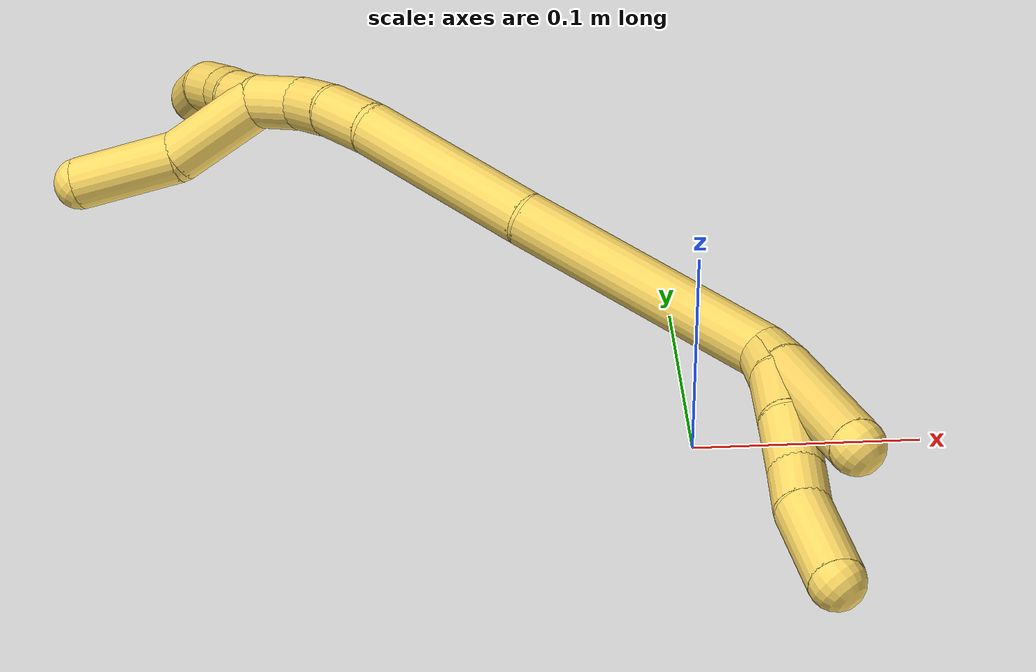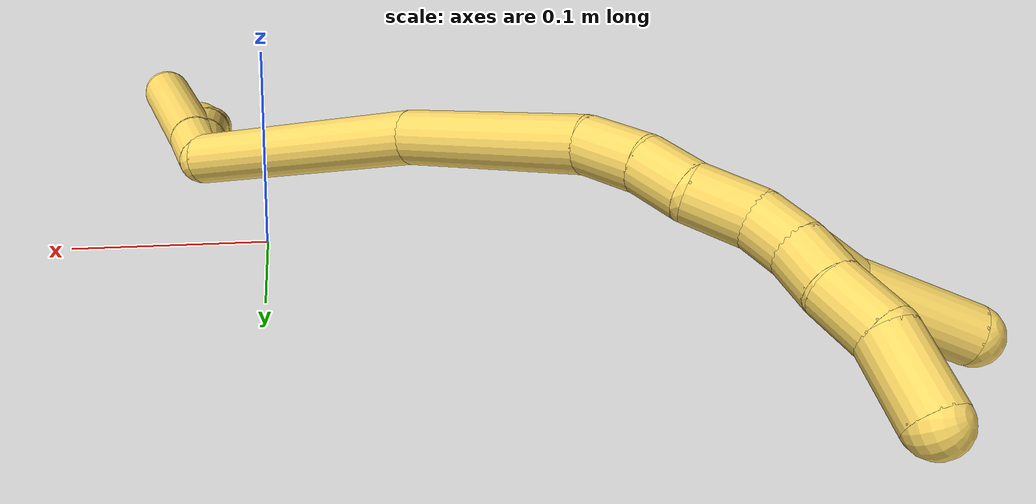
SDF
<sdf version="1.7">
 <world name="default">
  <model name="photoneo_s_sensor">
   <static>1</static>
   <pose>0 0 2 1.57079 1.57079 3.14159</pose>
   <link name="link">
    <inertial><mass>0.1</mass></inertial>
    <sensor name="sensor" type="depth">
     <update_rate>30</update_rate>
     <camera>
      <horizontal_fov>1.22</horizontal_fov>
      <image><width>1920</width><height>1200</height><format>B8G8R8</format></image>
      <clip><near>0.1</near><far>4</far></clip>
      <depth_camera><output>points</output></depth_camera>
     </camera>
     <plugin name="camera_plugin" filename="libgazebo_ros_depth_camera.so">
      <baseline>0.2</baseline>
      <alwaysOn>1</alwaysOn>
      <updateRate>0.0</updateRate>
      <cameraName>camera_ir</cameraName>
      <imageTopicName>/camera/color/image_raw</imageTopicName>
      <cameraInfoTopicName>/camera/color/camera_info</cameraInfoTopicName>
      <depthImageTopicName>/camera/depth/image_raw</depthImageTopicName>
      <depthImageCameraInfoTopicName>/camera/depth/camera_info</depthImageCameraInfoTopicName>
      <pointCloudTopicName>/camera/depth/points</pointCloudTopicName>
      <frameName>fr_optical</frameName>
      <pointCloudCutoff>0.1</pointCloudCutoff>
      <pointCloudCutoffMax>2.0</pointCloudCutoffMax>
      <distortionK1>0</distortionK1>
      <distortionK2>0</distortionK2>
      <distortionK3>0</distortionK3>
      <distortionT1>0</distortionT1>
      <distortionT2>0</distortionT2>
      <CxPrime>0</CxPrime>
      <Cx>0</Cx>
      <Cy>0</Cy>
      <focalLength>0</focalLength>
      <hackBaseline>0</hackBaseline>
     </plugin>
    </sensor>
   </link>
  </model>
  <model name="bin">
   <static>1</static>
   <link name="bottom">
    <collision name="collision-bottom">
     <pose>0 0 -0.01 0 -0 0</pose>
     <geometry><box><size>0.8 0.6 0.02</size></box></geometry>
     <surface>
      <friction><ode><mu>100</mu><mu2>100</mu2></ode></friction>
      <contact><collide_bitmask>65535</collide_bitmask></contact>
     </surface>
    </collision>
   </link>
   <link name="west_wall">
    <collision name="collision-west_wall">
     <pose>-0.41 0 0.1 0 -0 0</pose>
     <geometry><box><size>0.02 0.6 0.2</size></box></geometry>
     <surface>
      <friction><ode><mu>100</mu><mu2>100</mu2></ode></friction>
      <contact><collide_bitmask>65535</collide_bitmask></contact>
     </surface>
    </collision>
   </link>
   <link name="east_wall">
    <collision name="collision-east_wall">
     <pose>0.41 0 0.1 0 -0 0</pose>
     <geometry><box><size>0.02 0.6 0.2</size></box></geometry>
     <surface>
      <friction><ode><mu>100</mu><mu2>100</mu2></ode></friction>
      <contact><collide_bitmask>65535</collide_bitmask></contact>
     </surface>
    </collision>
   </link>
   <link name="south_wall">
    <collision name="collision-south_wall">
     <pose>0 -0.31 0.1 0 -0 0</pose>
     <geometry><box><size>0.8 0.02 0.2</size></box></geometry>
     <surface>
      <friction><ode><mu>100</mu><mu2>100</mu2></ode></friction>
      <contact><collide_bitmask>65535</collide_bitmask></contact>
     </surface>
    </collision>
   </link>
   <link name="north_wall">
    <collision name="collision-north_wall">
     <pose>0 0.31 0.1 0 -0 0</pose>
     <geometry><box><size>0.8 0.02 0.2</size></box></geometry>
     <surface>
      <friction><ode><mu>100</mu><mu2>100</mu2></ode></friction>
      <contact><collide_bitmask>65535</collide_bitmask></contact>
     </surface>
    </collision>
   </link>
  </model>
  <model name="5">
   <static>0</static>
   <link name="5">
    <collision name="collision-cylinder-e_1_2_8">
     <pose>0.001287 -0.009852 -0.008391 2.27629 0.099115 0.213967</pose>
     <geometry><cylinder><radius>0.0125</radius><length>0.026009</length></cylinder></geometry>
     <surface>
      <friction><ode><mu>1.16</mu><mu2>1.16</mu2><slip1>0</slip1><slip2>0</slip2></ode></friction>
      <contact><ode><kp>1e+06</kp><kd>1</kd><max_vel>0</max_vel><min_depth>0.001</min_depth></ode></contact>
     </surface>
    </collision>
    <visual name="visual-cylinder-e_1_2_8">
     <pose>0.001287 -0.009852 -0.008391 2.27629 0.099115 0.213967</pose>
     <geometry><cylinder><radius>0.0125</radius><length>0.026009</length></cylinder></geometry>
     <material><ambient>1 0.858824 0.4 1</ambient></material>
    </visual>
    <collision name="collision-cylinder-e_2_8_9">
     <pose>0.001317 -0.030605 -0.027272 2.33694 -0.08287 -0.194239</pose>
     <geometry><cylinder><radius>0.0125</radius><length>0.030362</length></cylinder></geometry>
     <surface>
      <friction><ode><mu>1.16</mu><mu2>1.16</mu2><slip1>0</slip1><slip2>0</slip2></ode></friction>
      <contact><ode><kp>1e+06</kp><kd>1</kd><max_vel>0</max_vel><min_depth>0.001</min_depth></ode></contact>
     </surface>
    </collision>
    <visual name="visual-cylinder-e_2_8_9">
     <pose>0.001317 -0.030605 -0.027272 2.33694 -0.08287 -0.194239</pose>
     <geometry><cylinder><radius>0.0125</radius><length>0.030362</length></cylinder></geometry>
     <material><ambient>1 0.858824 0.4 1</ambient></material>
    </visual>
    <collision name="collision-cylinder-e_3_9_10">
     <pose>-0.002825 -0.050158 -0.048918 2.48202 -0.201608 -0.574655</pose>
     <geometry><cylinder><radius>0.0125</radius><length>0.028819</length></cylinder></geometry>
     <surface>
      <friction><ode><mu>1.16</mu><mu2>1.16</mu2><slip1>0</slip1><slip2>0</slip2></ode></friction>
      <contact><ode><kp>1e+06</kp><kd>1</kd><max_vel>0</max_vel><min_depth>0.001</min_depth></ode></contact>
     </surface>
    </collision>
    <visual name="visual-cylinder-e_3_9_10">
     <pose>-0.002825 -0.050158 -0.048918 2.48202 -0.201608 -0.574655</pose>
     <geometry><cylinder><radius>0.0125</radius><length>0.028819</length></cylinder></geometry>
     <material><ambient>1 0.858824 0.4 1</ambient></material>
    </visual>
    <collision name="collision-cylinder-e_4_10_11">
     <pose>-0.007609 -0.065782 -0.067988 2.41926 -0.178074 -0.464155</pose>
     <geometry><cylinder><radius>0.0125</radius><length>0.021434</length></cylinder></geometry>
     <surface>
      <friction><ode><mu>1.16</mu><mu2>1.16</mu2><slip1>0</slip1><slip2>0</slip2></ode></friction>
      <contact><ode><kp>1e+06</kp><kd>1</kd><max_vel>0</max_vel><min_depth>0.001</min_depth></ode></contact>
     </surface>
    </collision>
    <visual name="visual-cylinder-e_4_10_11">
     <pose>-0.007609 -0.065782 -0.067988 2.41926 -0.178074 -0.464155</pose>
     <geometry><cylinder><radius>0.0125</radius><length>0.021434</length></cylinder></geometry>
     <material><ambient>1 0.858824 0.4 1</ambient></material>
    </visual>
    <collision name="collision-cylinder-e_5_11_6">
     <pose>-0.009894 -0.084984 -0.093809 2.54245 -0.017835 -0.057728</pose>
     <geometry><cylinder><radius>0.0125</radius><length>0.043375</length></cylinder></geometry>
     <surface>
      <friction><ode><mu>1.16</mu><mu2>1.16</mu2><slip1>0</slip1><slip2>0</slip2></ode></friction>
      <contact><ode><kp>1e+06</kp><kd>1</kd><max_vel>0</max_vel><min_depth>0.001</min_depth></ode></contact>
     </surface>
    </collision>
    <visual name="visual-cylinder-e_5_11_6">
     <pose>-0.009894 -0.084984 -0.093809 2.54245 -0.017835 -0.057728</pose>
     <geometry><cylinder><radius>0.0125</radius><length>0.043375</length></cylinder></geometry>
     <material><ambient>1 0.858824 0.4 1</ambient></material>
    </visual>
    <collision name="collision-cylinder-e_1_2_12">
     <pose>0.003372 -0.008076 -0.007935 2.34742 0.289438 0.668935</pose>
     <geometry><cylinder><radius>0.0125</radius><length>0.023627</length></cylinder></geometry>
     <surface>
      <friction><ode><mu>1.16</mu><mu2>1.16</mu2><slip1>0</slip1><slip2>0</slip2></ode></friction>
      <contact><ode><kp>1e+06</kp><kd>1</kd><max_vel>0</max_vel><min_depth>0.001</min_depth></ode></contact>
     </surface>
    </collision>
    <visual name="visual-cylinder-e_1_2_12">
     <pose>0.003372 -0.008076 -0.007935 2.34742 0.289438 0.668935</pose>
     <geometry><cylinder><radius>0.0125</radius><length>0.023627</length></cylinder></geometry>
     <material><ambient>1 0.858824 0.4 1</ambient></material>
    </visual>
    <collision name="collision-cylinder-e_2_12_5">
     <pose>0.01525 -0.041129 -0.043475 2.40612 0.224655 0.569666</pose>
     <geometry><cylinder><radius>0.0125</radius><length>0.076373</length></cylinder></geometry>
     <surface>
      <friction><ode><mu>1.16</mu><mu2>1.16</mu2><slip1>0</slip1><slip2>0</slip2></ode></friction>
      <contact><ode><kp>1e+06</kp><kd>1</kd><max_vel>0</max_vel><min_depth>0.001</min_depth></ode></contact>
     </surface>
    </collision>
    <visual name="visual-cylinder-e_2_12_5">
     <pose>0.01525 -0.041129 -0.043475 2.40612 0.224655 0.569666</pose>
     <geometry><cylinder><radius>0.0125</radius><length>0.076373</length></cylinder></geometry>
     <material><ambient>1 0.858824 0.4 1</ambient></material>
    </visual>
    <collision name="collision-cylinder-e_1_2_13">
     <pose>-0.021348 -0.001936 0.059649 0.032447 -0.343527 -0.005629</pose>
     <geometry><cylinder><radius>0.0125</radius><length>0.126768</length></cylinder></geometry>
     <surface>
      <friction><ode><mu>1.16</mu><mu2>1.16</mu2><slip1>0</slip1><slip2>0</slip2></ode></friction>
      <contact><ode><kp>1e+06</kp><kd>1</kd><max_vel>0</max_vel><min_depth>0.001</min_depth></ode></contact>
     </surface>
    </collision>
    <visual name="visual-cylinder-e_1_2_13">
     <pose>-0.021348 -0.001936 0.059649 0.032447 -0.343527 -0.005629</pose>
     <geometry><cylinder><radius>0.0125</radius><length>0.126768</length></cylinder></geometry>
     <material><ambient>1 0.858824 0.4 1</ambient></material>
    </visual>
    <collision name="collision-cylinder-e_2_13_14">
     <pose>-0.058992 0.002357 0.162587 -0.142932 -0.356672 0.025806</pose>
     <geometry><cylinder><radius>0.0125</radius><length>0.093342</length></cylinder></geometry>
     <surface>
      <friction><ode><mu>1.16</mu><mu2>1.16</mu2><slip1>0</slip1><slip2>0</slip2></ode></friction>
      <contact><ode><kp>1e+06</kp><kd>1</kd><max_vel>0</max_vel><min_depth>0.001</min_depth></ode></contact>
     </surface>
    </collision>
    <visual name="visual-cylinder-e_2_13_14">
     <pose>-0.058992 0.002357 0.162587 -0.142932 -0.356672 0.025806</pose>
     <geometry><cylinder><radius>0.0125</radius><length>0.093342</length></cylinder></geometry>
     <material><ambient>1 0.858824 0.4 1</ambient></material>
    </visual>
    <collision name="collision-cylinder-e_3_14_15">
     <pose>-0.081631 0.013539 0.217872 -0.391447 -0.454539 0.091638</pose>
     <geometry><cylinder><radius>0.0125</radius><length>0.028892</length></cylinder></geometry>
     <surface>
      <friction><ode><mu>1.16</mu><mu2>1.16</mu2><slip1>0</slip1><slip2>0</slip2></ode></friction>
      <contact><ode><kp>1e+06</kp><kd>1</kd><max_vel>0</max_vel><min_depth>0.001</min_depth></ode></contact>
     </surface>
    </collision>
    <visual name="visual-cylinder-e_3_14_15">
     <pose>-0.081631 0.013539 0.217872 -0.391447 -0.454539 0.091638</pose>
     <geometry><cylinder><radius>0.0125</radius><length>0.028892</length></cylinder></geometry>
     <material><ambient>1 0.858824 0.4 1</ambient></material>
    </visual>
    <collision name="collision-cylinder-e_4_15_16">
     <pose>-0.0943 0.024107 0.23852 -0.57587 -0.550261 0.166821</pose>
     <geometry><cylinder><radius>0.0125</radius><length>0.024199</length></cylinder></geometry>
     <surface>
      <friction><ode><mu>1.16</mu><mu2>1.16</mu2><slip1>0</slip1><slip2>0</slip2></ode></friction>
      <contact><ode><kp>1e+06</kp><kd>1</kd><max_vel>0</max_vel><min_depth>0.001</min_depth></ode></contact>
     </surface>
    </collision>
    <visual name="visual-cylinder-e_4_15_16">
     <pose>-0.0943 0.024107 0.23852 -0.57587 -0.550261 0.166821</pose>
     <geometry><cylinder><radius>0.0125</radius><length>0.024199</length></cylinder></geometry>
     <material><ambient>1 0.858824 0.4 1</ambient></material>
    </visual>
    <collision name="collision-cylinder-e_5_16_1">
     <pose>-0.109693 0.032164 0.256729 -0.249966 -0.743151 0.097838</pose>
     <geometry><cylinder><radius>0.0125</radius><length>0.026798</length></cylinder></geometry>
     <surface>
      <friction><ode><mu>1.16</mu><mu2>1.16</mu2><slip1>0</slip1><slip2>0</slip2></ode></friction>
      <contact><ode><kp>1e+06</kp><kd>1</kd><max_vel>0</max_vel><min_depth>0.001</min_depth></ode></contact>
     </surface>
    </collision>
    <visual name="visual-cylinder-e_5_16_1">
     <pose>-0.109693 0.032164 0.256729 -0.249966 -0.743151 0.097838</pose>
     <geometry><cylinder><radius>0.0125</radius><length>0.026798</length></cylinder></geometry>
     <material><ambient>1 0.858824 0.4 1</ambient></material>
    </visual>
    <collision name="collision-cylinder-e_1_1_17">
     <pose>-0.12401 0.040336 0.273124 -0.697725 -0.53208 0.197592</pose>
     <geometry><cylinder><radius>0.0125</radius><length>0.020701</length></cylinder></geometry>
     <surface>
      <friction><ode><mu>1.16</mu><mu2>1.16</mu2><slip1>0</slip1><slip2>0</slip2></ode></friction>
      <contact><ode><kp>1e+06</kp><kd>1</kd><max_vel>0</max_vel><min_depth>0.001</min_depth></ode></contact>
     </surface>
    </collision>
    <visual name="visual-cylinder-e_1_1_17">
     <pose>-0.12401 0.040336 0.273124 -0.697725 -0.53208 0.197592</pose>
     <geometry><cylinder><radius>0.0125</radius><length>0.020701</length></cylinder></geometry>
     <material><ambient>1 0.858824 0.4 1</ambient></material>
    </visual>
    <collision name="collision-cylinder-e_2_17_18">
     <pose>-0.133338 0.053618 0.285783 -0.913902 -0.403956 0.200677</pose>
     <geometry><cylinder><radius>0.0125</radius><length>0.020743</length></cylinder></geometry>
     <surface>
      <friction><ode><mu>1.16</mu><mu2>1.16</mu2><slip1>0</slip1><slip2>0</slip2></ode></friction>
      <contact><ode><kp>1e+06</kp><kd>1</kd><max_vel>0</max_vel><min_depth>0.001</min_depth></ode></contact>
     </surface>
    </collision>
    <visual name="visual-cylinder-e_2_17_18">
     <pose>-0.133338 0.053618 0.285783 -0.913902 -0.403956 0.200677</pose>
     <geometry><cylinder><radius>0.0125</radius><length>0.020743</length></cylinder></geometry>
     <material><ambient>1 0.858824 0.4 1</ambient></material>
    </visual>
    <collision name="collision-cylinder-e_3_18_19">
     <pose>-0.14349 0.068994 0.299521 -0.779619 -0.499729 0.208924</pose>
     <geometry><cylinder><radius>0.0125</radius><length>0.025359</length></cylinder></geometry>
     <surface>
      <friction><ode><mu>1.16</mu><mu2>1.16</mu2><slip1>0</slip1><slip2>0</slip2></ode></friction>
      <contact><ode><kp>1e+06</kp><kd>1</kd><max_vel>0</max_vel><min_depth>0.001</min_depth></ode></contact>
     </surface>
    </collision>
    <visual name="visual-cylinder-e_3_18_19">
     <pose>-0.14349 0.068994 0.299521 -0.779619 -0.499729 0.208924</pose>
     <geometry><cylinder><radius>0.0125</radius><length>0.025359</length></cylinder></geometry>
     <material><ambient>1 0.858824 0.4 1</ambient></material>
    </visual>
    <collision name="collision-cylinder-e_4_19_4">
     <pose>-0.158509 0.089588 0.313132 -1.15126 -0.569011 0.375088</pose>
     <geometry><cylinder><radius>0.0125</radius><length>0.033197</length></cylinder></geometry>
     <surface>
      <friction><ode><mu>1.16</mu><mu2>1.16</mu2><slip1>0</slip1><slip2>0</slip2></ode></friction>
      <contact><ode><kp>1e+06</kp><kd>1</kd><max_vel>0</max_vel><min_depth>0.001</min_depth></ode></contact>
     </surface>
    </collision>
    <visual name="visual-cylinder-e_4_19_4">
     <pose>-0.158509 0.089588 0.313132 -1.15126 -0.569011 0.375088</pose>
     <geometry><cylinder><radius>0.0125</radius><length>0.033197</length></cylinder></geometry>
     <material><ambient>1 0.858824 0.4 1</ambient></material>
    </visual>
    <collision name="collision-cylinder-e_1_1_20">
     <pose>-0.142192 0.032165 0.270575 0.517553 -1.36334 -0.42316</pose>
     <geometry><cylinder><radius>0.0125</radius><length>0.047893</length></cylinder></geometry>
     <surface>
      <friction><ode><mu>1.16</mu><mu2>1.16</mu2><slip1>0</slip1><slip2>0</slip2></ode></friction>
      <contact><ode><kp>1e+06</kp><kd>1</kd><max_vel>0</max_vel><min_depth>0.001</min_depth></ode></contact>
     </surface>
    </collision>
    <visual name="visual-cylinder-e_1_1_20">
     <pose>-0.142192 0.032165 0.270575 0.517553 -1.36334 -0.42316</pose>
     <geometry><cylinder><radius>0.0125</radius><length>0.047893</length></cylinder></geometry>
     <material><ambient>1 0.858824 0.4 1</ambient></material>
    </visual>
    <collision name="collision-cylinder-e_2_20_3">
     <pose>-0.188233 0.02642 0.287382 0.25804 -1.05064 -0.150125</pose>
     <geometry><cylinder><radius>0.0125</radius><length>0.052107</length></cylinder></geometry>
     <surface>
      <friction><ode><mu>1.16</mu><mu2>1.16</mu2><slip1>0</slip1><slip2>0</slip2></ode></friction>
      <contact><ode><kp>1e+06</kp><kd>1</kd><max_vel>0</max_vel><min_depth>0.001</min_depth></ode></contact>
     </surface>
    </collision>
    <visual name="visual-cylinder-e_2_20_3">
     <pose>-0.188233 0.02642 0.287382 0.25804 -1.05064 -0.150125</pose>
     <geometry><cylinder><radius>0.0125</radius><length>0.052107</length></cylinder></geometry>
     <material><ambient>1 0.858824 0.4 1</ambient></material>
    </visual>
    <collision name="collision-sphere-3">
     <pose>-0.21084 0.023116 0.299902 0 -0 0</pose>
     <geometry><sphere><radius>0.0125</radius></sphere></geometry>
     <surface>
      <friction><ode><mu>1.16</mu><mu2>1.16</mu2><slip1>0</slip1><slip2>0</slip2></ode></friction>
      <contact><ode><kp>1e+06</kp><kd>1</kd><max_vel>0</max_vel><min_depth>0.001</min_depth></ode></contact>
     </surface>
    </collision>
    <visual name="visual-sphere-3">
     <pose>-0.21084 0.023116 0.299902 0 -0 0</pose>
     <geometry><sphere><radius>0.0125</radius></sphere></geometry>
     <material><ambient>1 0.858824 0.4 1</ambient></material>
    </visual>
    <collision name="collision-sphere-20">
     <pose>-0.165625 0.029724 0.274862 0 -0 0</pose>
     <geometry><sphere><radius>0.0125</radius></sphere></geometry>
     <surface>
      <friction><ode><mu>1.16</mu><mu2>1.16</mu2><slip1>0</slip1><slip2>0</slip2></ode></friction>
      <contact><ode><kp>1e+06</kp><kd>1</kd><max_vel>0</max_vel><min_depth>0.001</min_depth></ode></contact>
     </surface>
    </collision>
    <visual name="visual-sphere-20">
     <pose>-0.165625 0.029724 0.274862 0 -0 0</pose>
     <geometry><sphere><radius>0.0125</radius></sphere></geometry>
     <material><ambient>1 0.858824 0.4 1</ambient></material>
    </visual>
    <collision name="collision-sphere-4">
     <pose>-0.167453 0.102359 0.318828 0 -0 0</pose>
     <geometry><sphere><radius>0.0125</radius></sphere></geometry>
     <surface>
      <friction><ode><mu>1.16</mu><mu2>1.16</mu2><slip1>0</slip1><slip2>0</slip2></ode></friction>
      <contact><ode><kp>1e+06</kp><kd>1</kd><max_vel>0</max_vel><min_depth>0.001</min_depth></ode></contact>
     </surface>
    </collision>
    <visual name="visual-sphere-4">
     <pose>-0.167453 0.102359 0.318828 0 -0 0</pose>
     <geometry><sphere><radius>0.0125</radius></sphere></geometry>
     <material><ambient>1 0.858824 0.4 1</ambient></material>
    </visual>
    <collision name="collision-sphere-6">
     <pose>-0.010281 -0.097213 -0.111716 0 -0 0</pose>
     <geometry><sphere><radius>0.0125</radius></sphere></geometry>
     <surface>
      <friction><ode><mu>1.16</mu><mu2>1.16</mu2><slip1>0</slip1><slip2>0</slip2></ode></friction>
      <contact><ode><kp>1e+06</kp><kd>1</kd><max_vel>0</max_vel><min_depth>0.001</min_depth></ode></contact>
     </surface>
    </collision>
    <visual name="visual-sphere-6">
     <pose>-0.010281 -0.097213 -0.111716 0 -0 0</pose>
     <geometry><sphere><radius>0.0125</radius></sphere></geometry>
     <material><ambient>1 0.858824 0.4 1</ambient></material>
    </visual>
    <collision name="collision-sphere-11">
     <pose>-0.009507 -0.072756 -0.075902 0 -0 0</pose>
     <geometry><sphere><radius>0.0125</radius></sphere></geometry>
     <surface>
      <friction><ode><mu>1.16</mu><mu2>1.16</mu2><slip1>0</slip1><slip2>0</slip2></ode></friction>
      <contact><ode><kp>1e+06</kp><kd>1</kd><max_vel>0</max_vel><min_depth>0.001</min_depth></ode></contact>
     </surface>
    </collision>
    <visual name="visual-sphere-11">
     <pose>-0.009507 -0.072756 -0.075902 0 -0 0</pose>
     <geometry><sphere><radius>0.0125</radius></sphere></geometry>
     <material><ambient>1 0.858824 0.4 1</ambient></material>
    </visual>
    <collision name="collision-sphere-10">
     <pose>-0.00571 -0.058809 -0.060075 0 -0 0</pose>
     <geometry><sphere><radius>0.0125</radius></sphere></geometry>
     <surface>
      <friction><ode><mu>1.16</mu><mu2>1.16</mu2><slip1>0</slip1><slip2>0</slip2></ode></friction>
      <contact><ode><kp>1e+06</kp><kd>1</kd><max_vel>0</max_vel><min_depth>0.001</min_depth></ode></contact>
     </surface>
    </collision>
    <visual name="visual-sphere-10">
     <pose>-0.00571 -0.058809 -0.060075 0 -0 0</pose>
     <geometry><sphere><radius>0.0125</radius></sphere></geometry>
     <material><ambient>1 0.858824 0.4 1</ambient></material>
    </visual>
    <collision name="collision-sphere-9">
     <pose>6e-05 -0.041507 -0.037761 0 -0 0</pose>
     <geometry><sphere><radius>0.0125</radius></sphere></geometry>
     <surface>
      <friction><ode><mu>1.16</mu><mu2>1.16</mu2><slip1>0</slip1><slip2>0</slip2></ode></friction>
      <contact><ode><kp>1e+06</kp><kd>1</kd><max_vel>0</max_vel><min_depth>0.001</min_depth></ode></contact>
     </surface>
    </collision>
    <visual name="visual-sphere-9">
     <pose>6e-05 -0.041507 -0.037761 0 -0 0</pose>
     <geometry><sphere><radius>0.0125</radius></sphere></geometry>
     <material><ambient>1 0.858824 0.4 1</ambient></material>
    </visual>
    <collision name="collision-sphere-2">
     <geometry><sphere><radius>0.0125</radius></sphere></geometry>
     <surface>
      <friction><ode><mu>1.16</mu><mu2>1.16</mu2><slip1>0</slip1><slip2>0</slip2></ode></friction>
      <contact><ode><kp>1e+06</kp><kd>1</kd><max_vel>0</max_vel><min_depth>0.001</min_depth></ode></contact>
     </surface>
    </collision>
    <visual name="visual-sphere-2">
     <geometry><sphere><radius>0.0125</radius></sphere></geometry>
     <material><ambient>1 0.858824 0.4 1</ambient></material>
    </visual>
    <collision name="collision-sphere-19">
     <pose>-0.149566 0.076818 0.307436 0 -0 0</pose>
     <geometry><sphere><radius>0.0125</radius></sphere></geometry>
     <surface>
      <friction><ode><mu>1.16</mu><mu2>1.16</mu2><slip1>0</slip1><slip2>0</slip2></ode></friction>
      <contact><ode><kp>1e+06</kp><kd>1</kd><max_vel>0</max_vel><min_depth>0.001</min_depth></ode></contact>
     </surface>
    </collision>
    <visual name="visual-sphere-19">
     <pose>-0.149566 0.076818 0.307436 0 -0 0</pose>
     <geometry><sphere><radius>0.0125</radius></sphere></geometry>
     <material><ambient>1 0.858824 0.4 1</ambient></material>
    </visual>
    <collision name="collision-sphere-8">
     <pose>0.002574 -0.019703 -0.016782 0 -0 0</pose>
     <geometry><sphere><radius>0.0125</radius></sphere></geometry>
     <surface>
      <friction><ode><mu>1.16</mu><mu2>1.16</mu2><slip1>0</slip1><slip2>0</slip2></ode></friction>
      <contact><ode><kp>1e+06</kp><kd>1</kd><max_vel>0</max_vel><min_depth>0.001</min_depth></ode></contact>
     </surface>
    </collision>
    <visual name="visual-sphere-8">
     <pose>0.002574 -0.019703 -0.016782 0 -0 0</pose>
     <geometry><sphere><radius>0.0125</radius></sphere></geometry>
     <material><ambient>1 0.858824 0.4 1</ambient></material>
    </visual>
    <collision name="collision-sphere-12">
     <pose>0.006743 -0.016152 -0.015871 0 -0 0</pose>
     <geometry><sphere><radius>0.0125</radius></sphere></geometry>
     <surface>
      <friction><ode><mu>1.16</mu><mu2>1.16</mu2><slip1>0</slip1><slip2>0</slip2></ode></friction>
      <contact><ode><kp>1e+06</kp><kd>1</kd><max_vel>0</max_vel><min_depth>0.001</min_depth></ode></contact>
     </surface>
    </collision>
    <visual name="visual-sphere-12">
     <pose>0.006743 -0.016152 -0.015871 0 -0 0</pose>
     <geometry><sphere><radius>0.0125</radius></sphere></geometry>
     <material><ambient>1 0.858824 0.4 1</ambient></material>
    </visual>
    <collision name="collision-sphere-5">
     <pose>0.023757 -0.066106 -0.071079 0 -0 0</pose>
     <geometry><sphere><radius>0.0125</radius></sphere></geometry>
     <surface>
      <friction><ode><mu>1.16</mu><mu2>1.16</mu2><slip1>0</slip1><slip2>0</slip2></ode></friction>
      <contact><ode><kp>1e+06</kp><kd>1</kd><max_vel>0</max_vel><min_depth>0.001</min_depth></ode></contact>
     </surface>
    </collision>
    <visual name="visual-sphere-5">
     <pose>0.023757 -0.066106 -0.071079 0 -0 0</pose>
     <geometry><sphere><radius>0.0125</radius></sphere></geometry>
     <material><ambient>1 0.858824 0.4 1</ambient></material>
    </visual>
    <collision name="collision-sphere-13">
     <pose>-0.042697 -0.003872 0.119299 0 -0 0</pose>
     <geometry><sphere><radius>0.0125</radius></sphere></geometry>
     <surface>
      <friction><ode><mu>1.16</mu><mu2>1.16</mu2><slip1>0</slip1><slip2>0</slip2></ode></friction>
      <contact><ode><kp>1e+06</kp><kd>1</kd><max_vel>0</max_vel><min_depth>0.001</min_depth></ode></contact>
     </surface>
    </collision>
    <visual name="visual-sphere-13">
     <pose>-0.042697 -0.003872 0.119299 0 -0 0</pose>
     <geometry><sphere><radius>0.0125</radius></sphere></geometry>
     <material><ambient>1 0.858824 0.4 1</ambient></material>
    </visual>
    <collision name="collision-sphere-14">
     <pose>-0.075288 0.008587 0.205874 0 -0 0</pose>
     <geometry><sphere><radius>0.0125</radius></sphere></geometry>
     <surface>
      <friction><ode><mu>1.16</mu><mu2>1.16</mu2><slip1>0</slip1><slip2>0</slip2></ode></friction>
      <contact><ode><kp>1e+06</kp><kd>1</kd><max_vel>0</max_vel><min_depth>0.001</min_depth></ode></contact>
     </surface>
    </collision>
    <visual name="visual-sphere-14">
     <pose>-0.075288 0.008587 0.205874 0 -0 0</pose>
     <geometry><sphere><radius>0.0125</radius></sphere></geometry>
     <material><ambient>1 0.858824 0.4 1</ambient></material>
    </visual>
    <collision name="collision-sphere-15">
     <pose>-0.087973 0.018491 0.229869 0 -0 0</pose>
     <geometry><sphere><radius>0.0125</radius></sphere></geometry>
     <surface>
      <friction><ode><mu>1.16</mu><mu2>1.16</mu2><slip1>0</slip1><slip2>0</slip2></ode></friction>
      <contact><ode><kp>1e+06</kp><kd>1</kd><max_vel>0</max_vel><min_depth>0.001</min_depth></ode></contact>
     </surface>
    </collision>
    <visual name="visual-sphere-15">
     <pose>-0.087973 0.018491 0.229869 0 -0 0</pose>
     <geometry><sphere><radius>0.0125</radius></sphere></geometry>
     <material><ambient>1 0.858824 0.4 1</ambient></material>
    </visual>
    <collision name="collision-sphere-16">
     <pose>-0.100627 0.029724 0.24717 0 -0 0</pose>
     <geometry><sphere><radius>0.0125</radius></sphere></geometry>
     <surface>
      <friction><ode><mu>1.16</mu><mu2>1.16</mu2><slip1>0</slip1><slip2>0</slip2></ode></friction>
      <contact><ode><kp>1e+06</kp><kd>1</kd><max_vel>0</max_vel><min_depth>0.001</min_depth></ode></contact>
     </surface>
    </collision>
    <visual name="visual-sphere-16">
     <pose>-0.100627 0.029724 0.24717 0 -0 0</pose>
     <geometry><sphere><radius>0.0125</radius></sphere></geometry>
     <material><ambient>1 0.858824 0.4 1</ambient></material>
    </visual>
    <collision name="collision-sphere-1">
     <pose>-0.118759 0.034605 0.266289 0 -0 0</pose>
     <geometry><sphere><radius>0.0125</radius></sphere></geometry>
     <surface>
      <friction><ode><mu>1.16</mu><mu2>1.16</mu2><slip1>0</slip1><slip2>0</slip2></ode></friction>
      <contact><ode><kp>1e+06</kp><kd>1</kd><max_vel>0</max_vel><min_depth>0.001</min_depth></ode></contact>
     </surface>
    </collision>
    <visual name="visual-sphere-1">
     <pose>-0.118759 0.034605 0.266289 0 -0 0</pose>
     <geometry><sphere><radius>0.0125</radius></sphere></geometry>
     <material><ambient>1 0.858824 0.4 1</ambient></material>
    </visual>
    <collision name="collision-sphere-18">
     <pose>-0.137414 0.06117 0.291606 0 -0 0</pose>
     <geometry><sphere><radius>0.0125</radius></sphere></geometry>
     <surface>
      <friction><ode><mu>1.16</mu><mu2>1.16</mu2><slip1>0</slip1><slip2>0</slip2></ode></friction>
      <contact><ode><kp>1e+06</kp><kd>1</kd><max_vel>0</max_vel><min_depth>0.001</min_depth></ode></contact>
     </surface>
    </collision>
    <visual name="visual-sphere-18">
     <pose>-0.137414 0.06117 0.291606 0 -0 0</pose>
     <geometry><sphere><radius>0.0125</radius></sphere></geometry>
     <material><ambient>1 0.858824 0.4 1</ambient></material>
    </visual>
    <collision name="collision-sphere-17">
     <pose>-0.129261 0.046066 0.279959 0 -0 0</pose>
     <geometry><sphere><radius>0.0125</radius></sphere></geometry>
     <surface>
      <friction><ode><mu>1.16</mu><mu2>1.16</mu2><slip1>0</slip1><slip2>0</slip2></ode></friction>
      <contact><ode><kp>1e+06</kp><kd>1</kd><max_vel>0</max_vel><min_depth>0.001</min_depth></ode></contact>
     </surface>
    </collision>
    <visual name="visual-sphere-17">
     <pose>-0.129261 0.046066 0.279959 0 -0 0</pose>
     <geometry><sphere><radius>0.0125</radius></sphere></geometry>
     <material><ambient>1 0.858824 0.4 1</ambient></material>
    </visual>
    <inertial>
     <pose>-0.061334 0.000453 0.116934 0 -0 0</pose>
     <mass>0.75</mass>
     <inertia><ixx>0.00031</ixx><ixy>0</ixy><ixz>0</ixz><iyy>0.000263</iyy><iyz>0</iyz><izz>0.00015</izz></inertia>
    </inertial>
   </link>
   <pose>0.030679 0.004355 0.046788 -0.859452 -0.82926 0.125494</pose>
  </model>
 </world>
</sdf>
